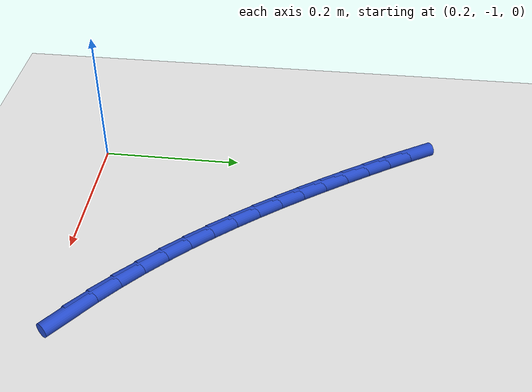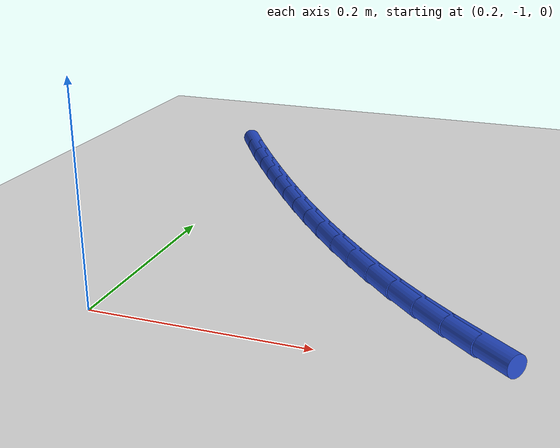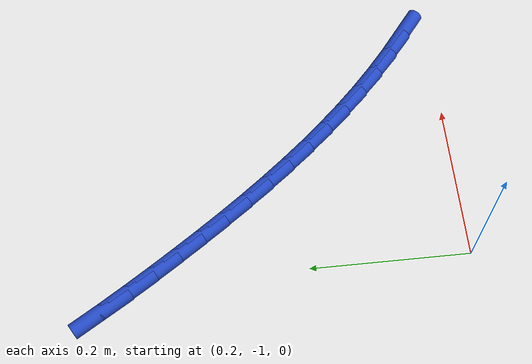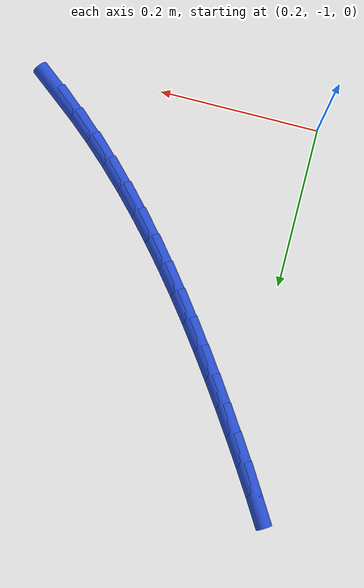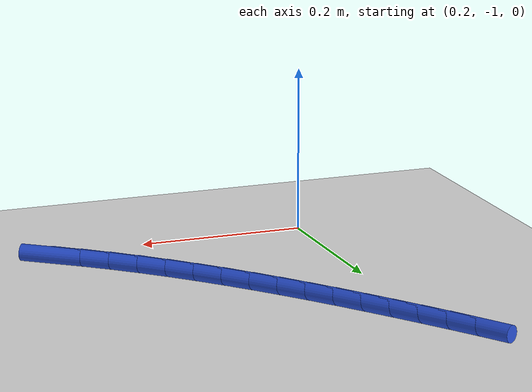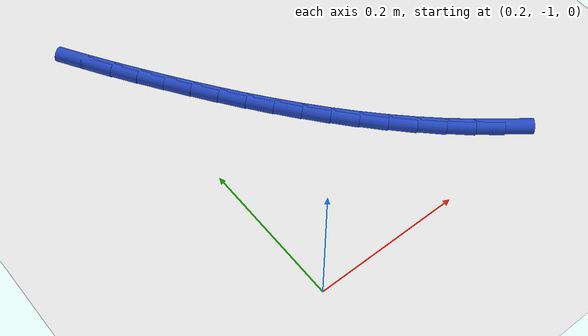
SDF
<sdf version="1.6">
 <world name="default">
  <model name="ground_plane">
   <static>1</static>
   <link name="link">
    <collision name="collision">
     <geometry><plane><normal>0 0 1</normal><size>100 100</size></plane></geometry>
     <surface><friction><ode><mu>100</mu><mu2>50</mu2></ode></friction></surface>
    </collision>
    <visual name="visual">
     <cast_shadows>0</cast_shadows>
     <geometry><plane><normal>0 0 1</normal><size>100 100</size></plane></geometry>
     <material>
      <script><uri>file://media/materials/scripts/gazebo.material</uri><name>Gazebo/WhiteGlow</name></script>
     </material>
    </visual>
   </link>
  </model>
  <model name="line">
   <link name="link_159">
    <pose>0.5210216426472649 -0.9649079843729171 0.01 0 1.57 -0.6648151187604698</pose>
    <collision name="collision">
     <geometry><cylinder><radius>0.01</radius><length>0.08</length></cylinder></geometry>
    </collision>
    <visual name="visual">
     <material>
      <script><name>Gazebo/Blue</name><uri>file://media/materials/scripts/gazebo.material</uri></script>
     </material>
     <geometry><cylinder><radius>0.01</radius><length>0.08</length></cylinder></geometry>
    </visual>
   </link>
   <link name="link_160">
    <pose>0.49231244500430343 -0.9424042980080051 0.01 0 1.57 -0.704604247598378</pose>
    <collision name="collision">
     <geometry><cylinder><radius>0.01</radius><length>0.08</length></cylinder></geometry>
    </collision>
    <visual name="visual">
     <material>
      <script><name>Gazebo/Blue</name><uri>file://media/materials/scripts/gazebo.material</uri></script>
     </material>
     <geometry><cylinder><radius>0.01</radius><length>0.08</length></cylinder></geometry>
    </visual>
   </link>
   <link name="link_161">
    <pose>0.4645806566133194 -0.9188270141435045 0.01 0 1.57 -0.7419484592693109</pose>
    <collision name="collision">
     <geometry><cylinder><radius>0.01</radius><length>0.08</length></cylinder></geometry>
    </collision>
    <visual name="visual">
     <material>
      <script><name>Gazebo/Blue</name><uri>file://media/materials/scripts/gazebo.material</uri></script>
     </material>
     <geometry><cylinder><radius>0.01</radius><length>0.08</length></cylinder></geometry>
    </visual>
   </link>
   <link name="link_162">
    <pose>0.4377701020525211 -0.8942506136871216 0.01 0 1.57 -0.7767591174825039</pose>
    <collision name="collision">
     <geometry><cylinder><radius>0.01</radius><length>0.08</length></cylinder></geometry>
    </collision>
    <visual name="visual">
     <material>
      <script><name>Gazebo/Blue</name><uri>file://media/materials/scripts/gazebo.material</uri></script>
     </material>
     <geometry><cylinder><radius>0.01</radius><length>0.08</length></cylinder></geometry>
    </visual>
   </link>
   <link name="link_163">
    <pose>0.4118246059001171 -0.8687495775465611 0.01 0 1.57 -0.8089834095727353</pose>
    <collision name="collision">
     <geometry><cylinder><radius>0.01</radius><length>0.08</length></cylinder></geometry>
    </collision>
    <visual name="visual">
     <material>
      <script><name>Gazebo/Blue</name><uri>file://media/materials/scripts/gazebo.material</uri></script>
     </material>
     <geometry><cylinder><radius>0.01</radius><length>0.08</length></cylinder></geometry>
    </visual>
   </link>
   <link name="link_164">
    <pose>0.38668799273431576 -0.8423983866295289 0.01 0 1.57 -0.8385981240154344</pose>
    <collision name="collision">
     <geometry><cylinder><radius>0.01</radius><length>0.08</length></cylinder></geometry>
    </collision>
    <visual name="visual">
     <material>
      <script><name>Gazebo/Blue</name><uri>file://media/materials/scripts/gazebo.material</uri></script>
     </material>
     <geometry><cylinder><radius>0.01</radius><length>0.08</length></cylinder></geometry>
    </visual>
   </link>
   <link name="link_165">
    <pose>0.3623040871333256 -0.8152715218437303 0.01 0 1.57 -0.8656032896077642</pose>
    <collision name="collision">
     <geometry><cylinder><radius>0.01</radius><length>0.08</length></cylinder></geometry>
    </collision>
    <visual name="visual">
     <material>
      <script><name>Gazebo/Blue</name><uri>file://media/materials/scripts/gazebo.material</uri></script>
     </material>
     <geometry><cylinder><radius>0.01</radius><length>0.08</length></cylinder></geometry>
    </visual>
   </link>
   <link name="link_166">
    <pose>0.33861671367535545 -0.7874434640968712 0.01 0 1.57 -0.8900160785217002</pose>
    <collision name="collision">
     <geometry><cylinder><radius>0.01</radius><length>0.08</length></cylinder></geometry>
    </collision>
    <visual name="visual">
     <material>
      <script><name>Gazebo/Blue</name><uri>file://media/materials/scripts/gazebo.material</uri></script>
     </material>
     <geometry><cylinder><radius>0.01</radius><length>0.08</length></cylinder></geometry>
    </visual>
   </link>
   <link name="link_167">
    <pose>0.31556969693861286 -0.7589886942966557 0.01 0 1.57 -0.9118652314280846</pose>
    <collision name="collision">
     <geometry><cylinder><radius>0.01</radius><length>0.08</length></cylinder></geometry>
    </collision>
    <visual name="visual">
     <material>
      <script><name>Gazebo/Blue</name><uri>file://media/materials/scripts/gazebo.material</uri></script>
     </material>
     <geometry><cylinder><radius>0.01</radius><length>0.08</length></cylinder></geometry>
    </visual>
   </link>
   <link name="link_168">
    <pose>0.2931068615013068 -0.7299816933507904 0.01 0 1.57 -0.9311861405677937</pose>
    <collision name="collision">
     <geometry><cylinder><radius>0.01</radius><length>0.08</length></cylinder></geometry>
    </collision>
    <visual name="visual">
     <material>
      <script><name>Gazebo/Blue</name><uri>file://media/materials/scripts/gazebo.material</uri></script>
     </material>
     <geometry><cylinder><radius>0.01</radius><length>0.08</length></cylinder></geometry>
    </visual>
   </link>
   <link name="link_169">
    <pose>0.27117203194164574 -0.7004969421669802 0.01 0 1.57 -0.9480166333590221</pose>
    <collision name="collision">
     <geometry><cylinder><radius>0.01</radius><length>0.08</length></cylinder></geometry>
    </collision>
    <visual name="visual">
     <material>
      <script><name>Gazebo/Blue</name><uri>file://media/materials/scripts/gazebo.material</uri></script>
     </material>
     <geometry><cylinder><radius>0.01</radius><length>0.08</length></cylinder></geometry>
    </visual>
   </link>
   <link name="link_170">
    <pose>0.24970903283783794 -0.6706089216529307 0.01 0 1.57 -0.9623934350346232</pose>
    <collision name="collision">
     <geometry><cylinder><radius>0.01</radius><length>0.08</length></cylinder></geometry>
    </collision>
    <visual name="visual">
     <material>
      <script><name>Gazebo/Blue</name><uri>file://media/materials/scripts/gazebo.material</uri></script>
     </material>
     <geometry><cylinder><radius>0.01</radius><length>0.08</length></cylinder></geometry>
    </visual>
   </link>
   <link name="link_171">
    <pose>0.228661688768092 -0.6403921127163473 0.01 0 1.57 -0.9743520434485963</pose>
    <collision name="collision">
     <geometry><cylinder><radius>0.01</radius><length>0.08</length></cylinder></geometry>
    </collision>
    <visual name="visual">
     <material>
      <script><name>Gazebo/Blue</name><uri>file://media/materials/scripts/gazebo.material</uri></script>
     </material>
     <geometry><cylinder><radius>0.01</radius><length>0.08</length></cylinder></geometry>
    </visual>
   </link>
   <link name="link_172">
    <pose>0.2079739136965769 -0.6099209447604871 0.01 0 1.57 -0.9854055441837799</pose>
    <collision name="collision">
     <geometry><cylinder><radius>0.01</radius><length>0.08</length></cylinder></geometry>
    </collision>
    <visual name="visual">
     <material>
      <script><name>Gazebo/Blue</name><uri>file://media/materials/scripts/gazebo.material</uri></script>
     </material>
     <geometry><cylinder><radius>0.01</radius><length>0.08</length></cylinder></geometry>
    </visual>
   </link>
   <link name="link_173">
    <pose>0.18763713478333177 -0.5792424699473745 0.01 0 1.57 -0.9995182338954931</pose>
    <collision name="collision">
     <geometry><cylinder><radius>0.01</radius><length>0.08</length></cylinder></geometry>
    </collision>
    <visual name="visual">
     <material>
      <script><name>Gazebo/Blue</name><uri>file://media/materials/scripts/gazebo.material</uri></script>
     </material>
     <geometry><cylinder><radius>0.01</radius><length>0.08</length></cylinder></geometry>
    </visual>
   </link>
   <link name="link_174">
    <pose>0.16776832667653857 -0.5483313996123346 0.01 0 1.57 -1.0173938904226567</pose>
    <collision name="collision">
     <geometry><cylinder><radius>0.01</radius><length>0.08</length></cylinder></geometry>
    </collision>
    <visual name="visual">
     <material>
      <script><name>Gazebo/Blue</name><uri>file://media/materials/scripts/gazebo.material</uri></script>
     </material>
     <geometry><cylinder><radius>0.01</radius><length>0.08</length></cylinder></geometry>
    </visual>
   </link>
  </model>
 </world>
</sdf>
